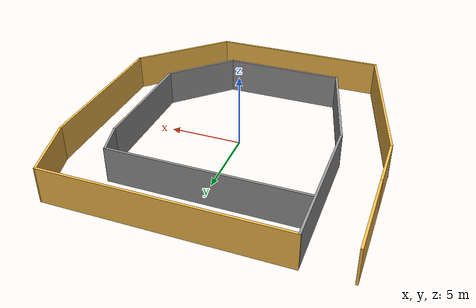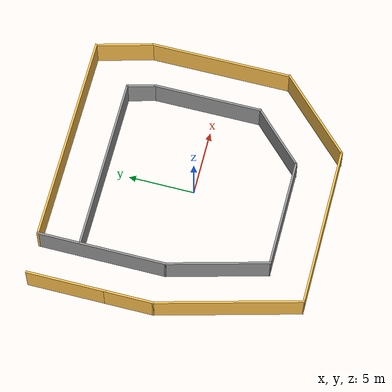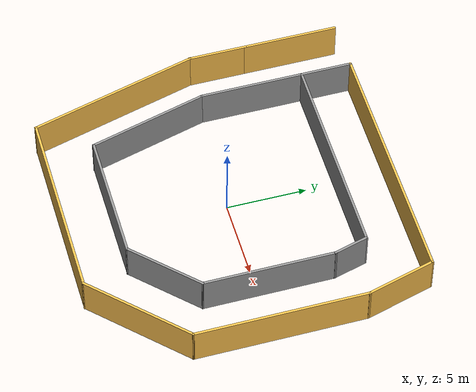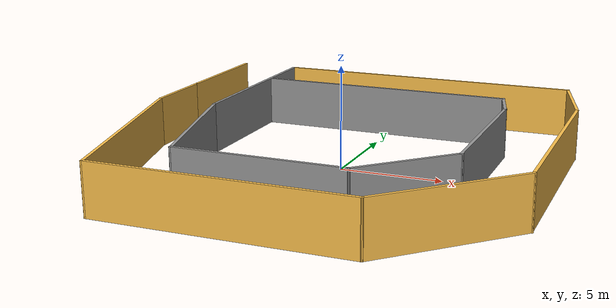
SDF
<?xml version='1.0'?>
<sdf version='1.6'>
  <model name='parkur'>
    <pose frame=''>-0.015788 -0.057888 0 0 -0 0</pose>
    <link name='Wall_10'>
      <collision name='Wall_10_Collision'>
        <geometry>
          <box>
            <size>4.5 0.15 2.5</size>
          </box>
        </geometry>
        <pose frame=''>0 0 1.25 0 -0 0</pose>
      </collision>
      <visual name='Wall_10_Visual'>
        <pose frame=''>0 0 1.25 0 -0 0</pose>
        <geometry>
          <box>
            <size>4.5 0.15 2.5</size>
          </box>
        </geometry>
        <material>
          <script>
            <uri>file://media/materials/scripts/gazebo.material</uri>
            <name>Gazebo/Grey</name>
          </script>
          <ambient>1 0.764706 0.305882 1</ambient>
        </material>
        <meta>
          <layer>0</layer>
        </meta>
      </visual>
      <pose frame=''>9.48268 7.90572 0 0 -0 1.8326</pose>
    </link>
    <link name='Wall_11'>
      <collision name='Wall_11_Collision'>
        <geometry>
          <box>
            <size>16 0.15 2.5</size>
          </box>
        </geometry>
        <pose frame=''>0 0 1.25 0 -0 0</pose>
      </collision>
      <visual name='Wall_11_Visual'>
        <pose frame=''>0 0 1.25 0 -0 0</pose>
        <geometry>
          <box>
            <size>16 0.15 2.5</size>
          </box>
        </geometry>
        <material>
          <script>
            <uri>file://media/materials/scripts/gazebo.material</uri>
            <name>Gazebo/Grey</name>
          </script>
          <ambient>1 0.764706 0.305882 1</ambient>
        </material>
        <meta>
          <layer>0</layer>
        </meta>
      </visual>
      <pose frame=''>0.994743 10.0066 0 0 -0 3.14159</pose>
    </link>
    <link name='Wall_13'>
      <collision name='Wall_13_Collision'>
        <geometry>
          <box>
            <size>9.75 0.15 2.5</size>
          </box>
        </geometry>
        <pose frame=''>0 0 1.25 0 -0 0</pose>
      </collision>
      <visual name='Wall_13_Visual'>
        <pose frame=''>0 0 1.25 0 -0 0</pose>
        <geometry>
          <box>
            <size>9.75 0.15 2.5</size>
          </box>
        </geometry>
        <material>
          <script>
            <uri>file://media/materials/scripts/gazebo.material</uri>
            <name>Gazebo/Grey</name>
          </script>
          <ambient>1 1 1 1</ambient>
        </material>
        <meta>
          <layer>0</layer>
        </meta>
      </visual>
      <pose frame=''>-6.93026 5.20661 0 0 -0 -1.5708</pose>
    </link>
    <link name='Wall_14'>
      <collision name='Wall_14_Collision'>
        <geometry>
          <box>
            <size>7.75 0.15 2.5</size>
          </box>
        </geometry>
        <pose frame=''>0 0 1.25 0 -0 0</pose>
      </collision>
      <visual name='Wall_14_Visual'>
        <pose frame=''>0 0 1.25 0 -0 0</pose>
        <geometry>
          <box>
            <size>7.75 0.15 2.5</size>
          </box>
        </geometry>
        <material>
          <script>
            <uri>file://media/materials/scripts/gazebo.material</uri>
            <name>Gazebo/Grey</name>
          </script>
          <ambient>1 1 1 1</ambient>
        </material>
        <meta>
          <layer>0</layer>
        </meta>
      </visual>
      <pose frame=''>-5.94674 -3.26391 0 0 -0 -1.309</pose>
    </link>
    <link name='Wall_2'>
      <collision name='Wall_2_Collision'>
        <geometry>
          <box>
            <size>3.75 0.15 2.5</size>
          </box>
        </geometry>
        <pose frame=''>0 0 1.25 0 -0 0</pose>
      </collision>
      <visual name='Wall_2_Visual'>
        <pose frame=''>0 0 1.25 0 -0 0</pose>
        <geometry>
          <box>
            <size>3.75 0.15 2.5</size>
          </box>
        </geometry>
        <material>
          <script>
            <uri>file://media/materials/scripts/gazebo.material</uri>
            <name>Gazebo/Grey</name>
          </script>
          <ambient>1 0.764706 0.305882 1</ambient>
        </material>
        <meta>
          <layer>0</layer>
        </meta>
      </visual>
      <pose frame=''>-10.0598 2.28789 0 0 -0 1.5708</pose>
    </link>
    <link name='Wall_20'>
      <collision name='Wall_20_Collision'>
        <geometry>
          <box>
            <size>8.25 0.15 2.5</size>
          </box>
        </geometry>
        <pose frame=''>0 0 1.25 0 -0 0</pose>
      </collision>
      <visual name='Wall_20_Visual'>
        <pose frame=''>0 0 1.25 0 -0 0</pose>
        <geometry>
          <box>
            <size>8.25 0.15 2.5</size>
          </box>
        </geometry>
        <material>
          <script>
            <uri>file://media/materials/scripts/gazebo.material</uri>
            <name>Gazebo/Grey</name>
          </script>
          <ambient>1 1 1 1</ambient>
        </material>
        <meta>
          <layer>0</layer>
        </meta>
      </visual>
      <pose frame=''>-0.913222 -6.93427 0 0 -0 3.9e-05</pose>
    </link>
    <link name='Wall_27'>
      <collision name='Wall_27_Collision'>
        <geometry>
          <box>
            <size>5.25 0.15 2.5</size>
          </box>
        </geometry>
        <pose frame=''>0 0 1.25 0 -0 0</pose>
      </collision>
      <visual name='Wall_27_Visual'>
        <pose frame=''>0 0 1.25 0 -0 0</pose>
        <geometry>
          <box>
            <size>5.25 0.15 2.5</size>
          </box>
        </geometry>
        <material>
          <script>
            <uri>file://media/materials/scripts/gazebo.material</uri>
            <name>Gazebo/Grey</name>
          </script>
          <ambient>1 1 1 1</ambient>
        </material>
        <meta>
          <layer>0</layer>
        </meta>
      </visual>
      <pose frame=''>4.93979 -5.13111 0 0 -0 0.785398</pose>
    </link>
    <link name='Wall_28'>
      <collision name='Wall_28_Collision'>
        <geometry>
          <box>
            <size>8.25 0.15 2.5</size>
          </box>
        </geometry>
        <pose frame=''>0 0 1.25 0 -0 0</pose>
      </collision>
      <visual name='Wall_28_Visual'>
        <pose frame=''>0 0 1.25 0 -0 0</pose>
        <geometry>
          <box>
            <size>8.25 0.15 2.5</size>
          </box>
        </geometry>
        <material>
          <script>
            <uri>file://media/materials/scripts/gazebo.material</uri>
            <name>Gazebo/Grey</name>
          </script>
          <ambient>1 1 1 1</ambient>
        </material>
        <meta>
          <layer>0</layer>
        </meta>
      </visual>
      <pose frame=''>6.7429 0.721854 0 0 -0 1.57077</pose>
    </link>
    <link name='Wall_32'>
      <collision name='Wall_32_Collision'>
        <geometry>
          <box>
            <size>13.25 0.15 2.5</size>
          </box>
        </geometry>
        <pose frame=''>0 0 1.25 0 -0 0</pose>
      </collision>
      <visual name='Wall_32_Visual'>
        <pose frame=''>0 0 1.25 0 -0 0</pose>
        <geometry>
          <box>
            <size>13.25 0.15 2.5</size>
          </box>
        </geometry>
        <material>
          <script>
            <uri>file://media/materials/scripts/gazebo.material</uri>
            <name>Gazebo/Grey</name>
          </script>
          <ambient>1 1 1 1</ambient>
        </material>
        <meta>
          <layer>0</layer>
        </meta>
      </visual>
      <pose frame=''>-0.356533 6.83186 0 0 -0 3.14159</pose>
    </link>
    <link name='Wall_34'>
      <collision name='Wall_34_Collision'>
        <geometry>
          <box>
            <size>2.25 0.15 2.5</size>
          </box>
        </geometry>
        <pose frame=''>0 0 1.25 0 -0 0</pose>
      </collision>
      <visual name='Wall_34_Visual'>
        <pose frame=''>0 0 1.25 0 -0 0</pose>
        <geometry>
          <box>
            <size>2.25 0.15 2.5</size>
          </box>
        </geometry>
        <material>
          <script>
            <uri>file://media/materials/scripts/gazebo.material</uri>
            <name>Gazebo/Grey</name>
          </script>
          <ambient>1 1 1 1</ambient>
        </material>
        <meta>
          <layer>0</layer>
        </meta>
      </visual>
      <pose frame=''>6.47125 5.78604 0 0 -0 1.8326</pose>
    </link>
    <link name='Wall_4'>
      <collision name='Wall_4_Collision'>
        <geometry>
          <box>
            <size>6 0.15 2.5</size>
          </box>
        </geometry>
        <pose frame=''>0 0 1.25 0 -0 0</pose>
      </collision>
      <visual name='Wall_4_Visual'>
        <pose frame=''>0 0 1.25 0 -0 0</pose>
        <geometry>
          <box>
            <size>6 0.15 2.5</size>
          </box>
        </geometry>
        <material>
          <script>
            <uri>file://media/materials/scripts/gazebo.material</uri>
            <name>Gazebo/Grey</name>
          </script>
          <ambient>1 0.764706 0.305882 1</ambient>
        </material>
        <meta>
          <layer>0</layer>
        </meta>
      </visual>
      <pose frame=''>-10.0598 7.01289 0 0 -0 1.5708</pose>
    </link>
    <link name='Wall_6'>
      <collision name='Wall_6_Collision'>
        <geometry>
          <box>
            <size>11 0.15 2.5</size>
          </box>
        </geometry>
        <pose frame=''>0 0 1.25 0 -0 0</pose>
      </collision>
      <visual name='Wall_6_Visual'>
        <pose frame=''>0 0 1.25 0 -0 0</pose>
        <geometry>
          <box>
            <size>11 0.15 2.5</size>
          </box>
        </geometry>
        <material>
          <script>
            <uri>file://media/materials/scripts/gazebo.material</uri>
            <name>Gazebo/Grey</name>
          </script>
          <ambient>1 0.764706 0.305882 1</ambient>
        </material>
        <meta>
          <layer>0</layer>
        </meta>
      </visual>
      <pose frame=''>-8.65572 -4.75225 0 0 -0 -1.309</pose>
    </link>
    <link name='Wall_7'>
      <collision name='Wall_7_Collision'>
        <geometry>
          <box>
            <size>12.25 0.15 2.5</size>
          </box>
        </geometry>
        <pose frame=''>0 0 1.25 0 -0 0</pose>
      </collision>
      <visual name='Wall_7_Visual'>
        <pose frame=''>0 0 1.25 0 -0 0</pose>
        <geometry>
          <box>
            <size>12.25 0.15 2.5</size>
          </box>
        </geometry>
        <material>
          <script>
            <uri>file://media/materials/scripts/gazebo.material</uri>
            <name>Gazebo/Grey</name>
          </script>
          <ambient>1 0.764706 0.305882 1</ambient>
        </material>
        <meta>
          <layer>0</layer>
        </meta>
      </visual>
      <pose frame=''>-1.20163 -9.9924 0 0 -0 0</pose>
    </link>
    <link name='Wall_8'>
      <collision name='Wall_8_Collision'>
        <geometry>
          <box>
            <size>7.5 0.15 2.5</size>
          </box>
        </geometry>
        <pose frame=''>0 0 1.25 0 -0 0</pose>
      </collision>
      <visual name='Wall_8_Visual'>
        <pose frame=''>0 0 1.25 0 -0 0</pose>
        <geometry>
          <box>
            <size>7.5 0.15 2.5</size>
          </box>
        </geometry>
        <material>
          <script>
            <uri>file://media/materials/scripts/gazebo.material</uri>
            <name>Gazebo/Grey</name>
          </script>
          <ambient>1 0.764706 0.305882 1</ambient>
        </material>
        <meta>
          <layer>0</layer>
        </meta>
      </visual>
      <pose frame=''>7.44699 -7.39378 0 0 -0 0.785398</pose>
    </link>
    <link name='Wall_9'>
      <collision name='Wall_9_Collision'>
        <geometry>
          <box>
            <size>10.75 0.15 2.5</size>
          </box>
        </geometry>
        <pose frame=''>0 0 1.25 0 -0 0</pose>
      </collision>
      <visual name='Wall_9_Visual'>
        <pose frame=''>0 0 1.25 0 -0 0</pose>
        <geometry>
          <box>
            <size>10.75 0.15 2.5</size>
          </box>
        </geometry>
        <material>
          <script>
            <uri>file://media/materials/scripts/gazebo.material</uri>
            <name>Gazebo/Grey</name>
          </script>
          <ambient>1 0.764706 0.305882 1</ambient>
        </material>
        <meta>
          <layer>0</layer>
        </meta>
      </visual>
      <pose frame=''>10.0456 0.504834 0 0 -0 1.5708</pose>
    </link>
    <static>1</static>
  </model>
</sdf>
